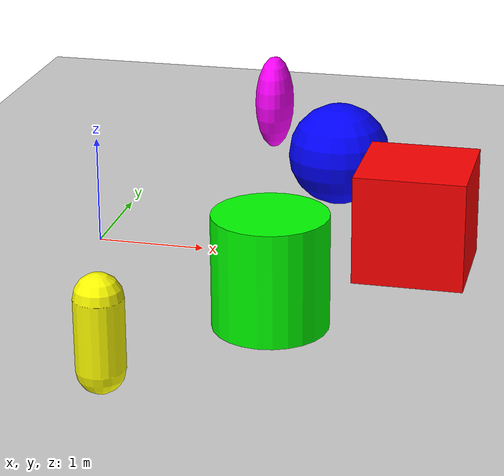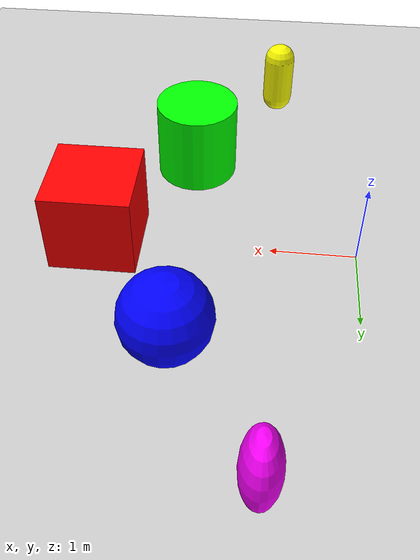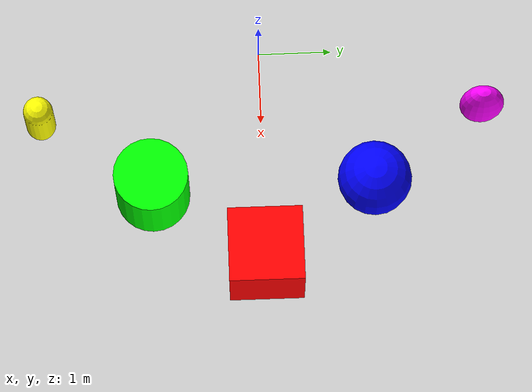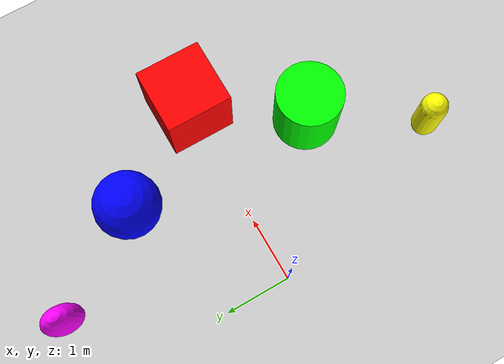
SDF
<?xml version="1.0" ?>
<sdf version="1.6">
  <world name="shapes">
    <scene>
      <ambient>1.0 1.0 1.0</ambient>
      <background>0.8 0.8 0.8</background>
    </scene>

    <physics name="physics" type="bullet-featherstone">
      <max_step_size>0.01</max_step_size>  <!-- 10ms = 100 Hz - high precision for capable hardware -->
      <real_time_factor>1.0</real_time_factor>
      <real_time_update_rate>100</real_time_update_rate>
    </physics>

    <light type="directional" name="sun">
      <cast_shadows>true</cast_shadows>
      <pose>0 0 10 0 0 0</pose>
      <diffuse>0.8 0.8 0.8 1</diffuse>
      <specular>0.2 0.2 0.2 1</specular>
      <attenuation>
        <range>1000</range>
        <constant>0.9</constant>
        <linear>0.01</linear>
        <quadratic>0.001</quadratic>
      </attenuation>
      <direction>-0.5 0.1 -0.9</direction>
    </light>

    <model name="ground_plane">
      <static>true</static>
      <link name="link">
        <collision name="collision">
          <geometry>
            <plane>
              <normal>0 0 1</normal>
              <size>100 100</size>
            </plane>
          </geometry>
        </collision>
        <visual name="visual">
          <geometry>
            <plane>
              <normal>0 0 1</normal>
              <size>100 100</size>
            </plane>
          </geometry>
          <material>
            <ambient>0.8 0.8 0.8 1</ambient>
            <diffuse>0.8 0.8 0.8 1</diffuse>
            <specular>0.8 0.8 0.8 1</specular>
          </material>
        </visual>
      </link>
    </model>

    <model name="box">
      <pose>3.0 0 0.5 0 0 0</pose>
      <link name="box_link">
        <inertial>
          <inertia>
            <ixx>0.16666</ixx>
            <ixy>0</ixy>
            <ixz>0</ixz>
            <iyy>0.16666</iyy>
            <iyz>0</iyz>
            <izz>0.16666</izz>
          </inertia>
          <mass>1.0</mass>
        </inertial>
        <collision name="box_collision">
          <geometry>
            <box>
              <size>1 1 1</size>
            </box>
          </geometry>
        </collision>

        <visual name="box_visual">
          <geometry>
            <box>
              <size>1 1 1</size>
            </box>
          </geometry>
          <material>
            <ambient>1 0 0 1</ambient>
            <diffuse>1 0 0 1</diffuse>
            <specular>1 0 0 1</specular>
          </material>
        </visual>
      </link>
    </model>

    <model name="cylinder">
      <pose>2.0 -1.5 0.5 0 0 0</pose>
      <link name="cylinder_link">
        <inertial>
          <inertia>
            <ixx>0.1458</ixx>
            <ixy>0</ixy>
            <ixz>0</ixz>
            <iyy>0.1458</iyy>
            <iyz>0</iyz>
            <izz>0.125</izz>
          </inertia>
          <mass>1.0</mass>
        </inertial>
        <collision name="cylinder_collision">
          <geometry>
            <cylinder>
              <radius>0.5</radius>
              <length>1.0</length>
            </cylinder>
          </geometry>
        </collision>

        <visual name="cylinder_visual">
          <geometry>
            <cylinder>
              <radius>0.5</radius>
              <length>1.0</length>
            </cylinder>
          </geometry>
          <material>
            <ambient>0 1 0 1</ambient>
            <diffuse>0 1 0 1</diffuse>
            <specular>0 1 0 1</specular>
          </material>
        </visual>
      </link>
    </model>

    <model name="sphere">
      <pose>2.0 1.5 0.5 0 0 0</pose>
      <link name="sphere_link">
        <inertial>
          <inertia>
            <ixx>0.1</ixx>
            <ixy>0</ixy>
            <ixz>0</ixz>
            <iyy>0.1</iyy>
            <iyz>0</iyz>
            <izz>0.1</izz>
          </inertia>
          <mass>1.0</mass>
        </inertial>
        <collision name="sphere_collision">
          <geometry>
            <sphere>
              <radius>0.5</radius>
            </sphere>
          </geometry>
        </collision>

        <visual name="sphere_visual">
          <geometry>
            <sphere>
              <radius>0.5</radius>
            </sphere>
          </geometry>
          <material>
            <ambient>0 0 1 1</ambient>
            <diffuse>0 0 1 1</diffuse>
            <specular>0 0 1 1</specular>
          </material>
        </visual>
      </link>
    </model>

    <model name="capsule">
      <pose>1.0 -3.0 0.5 0 0 0</pose>
      <link name="capsule_link">
        <inertial>
          <inertia>
            <ixx>0.074154</ixx>
            <ixy>0</ixy>
            <ixz>0</ixz>
            <iyy>0.074154</iyy>
            <iyz>0</iyz>
            <izz>0.018769</izz>
          </inertia>
          <mass>1.0</mass>
        </inertial>
        <collision name="capsule_collision">
          <geometry>
            <capsule>
              <radius>0.2</radius>
              <length>0.6</length>
            </capsule>
          </geometry>
        </collision>
        <visual name="capsule_visual">
          <geometry>
            <capsule>
              <radius>0.2</radius>
              <length>0.6</length>
            </capsule>
          </geometry>
          <material>
            <ambient>1 1 0 1</ambient>
            <diffuse>1 1 0 1</diffuse>
            <specular>1 1 0 1</specular>
          </material>
        </visual>
      </link>
    </model>

    <model name="ellipsoid">
      <pose>1.0 3.0 0.5 0 0 0</pose>
      <link name="ellipsoid_link">
        <inertial>
          <inertia>
            <ixx>0.068</ixx>
            <ixy>0</ixy>
            <ixz>0</ixz>
            <iyy>0.058</iyy>
            <iyz>0</iyz>
            <izz>0.026</izz>
          </inertia>
          <mass>1.0</mass>
        </inertial>
        <collision name="ellipsoid_collision">
          <geometry>
            <ellipsoid>
              <radii>0.2 0.3 0.5</radii>
            </ellipsoid>
          </geometry>
        </collision>
        <visual name="ellipsoid_visual">
          <geometry>
            <ellipsoid>
              <radii>0.2 0.3 0.5</radii>
            </ellipsoid>
          </geometry>
          <material>
            <ambient>1 0 1 1</ambient>
            <diffuse>1 0 1 1</diffuse>
            <specular>1 0 1 1</specular>
          </material>
        </visual>
      </link>
    </model>

<!-- Plugins Section -->

<gazebo>

  <plugin
      filename="gz-sim-user-commands-system"
      name="gz::sim::systems::UserCommands">
  </plugin>

  <plugin
      filename="gz-sim-scene-broadcaster-system"
      name="gz::sim::systems::SceneBroadcaster">
  </plugin>

  <plugin
      filename="gz-sim-sensors-system"
      name="gz::sim::systems::Sensors">
  </plugin>

  <plugin
      filename="gz-sim-imu-system"
      name="gz::sim::systems::Imu">
  </plugin>
</gazebo>

</world>
</sdf>
